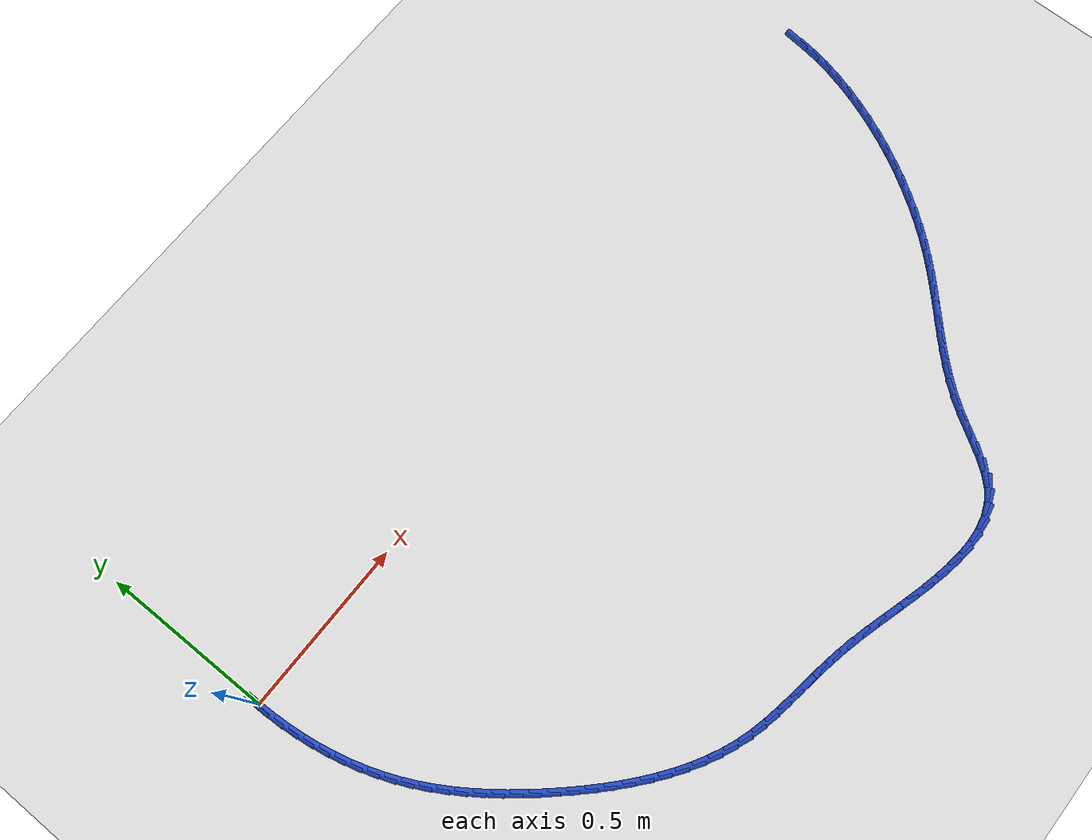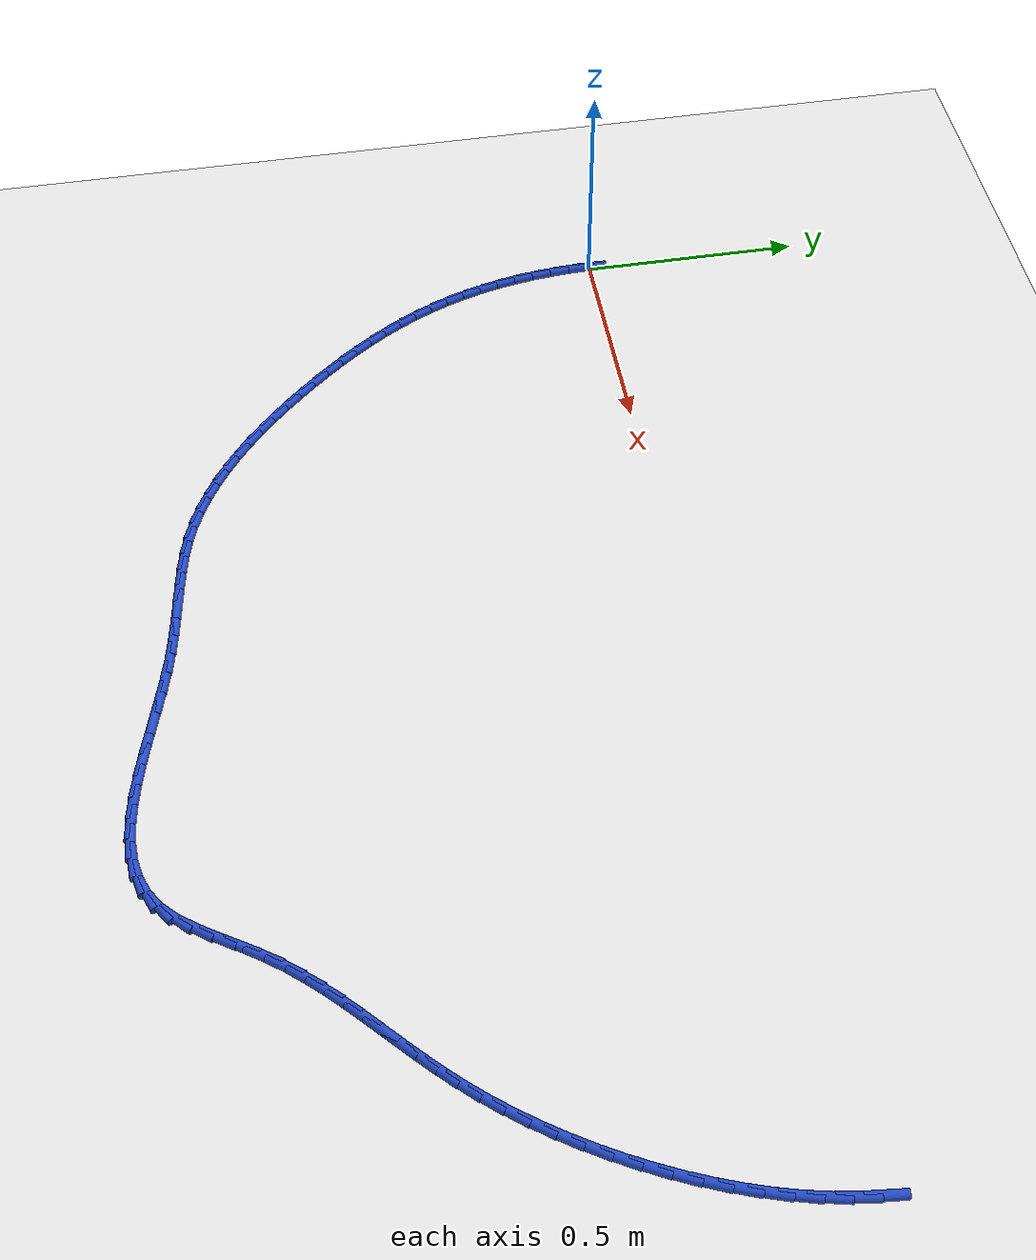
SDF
<sdf version="1.6">
 <world name="default">
  <model name="ground_plane">
   <static>1</static>
   <link name="link">
    <collision name="collision">
     <geometry><plane><normal>0 0 1</normal><size>100 100</size></plane></geometry>
     <surface><friction><ode><mu>100</mu><mu2>50</mu2></ode></friction></surface>
    </collision>
    <visual name="visual">
     <cast_shadows>0</cast_shadows>
     <geometry><plane><normal>0 0 1</normal><size>100 100</size></plane></geometry>
     <material>
      <script><uri>file://media/materials/scripts/gazebo.material</uri><name>Gazebo/WhiteGlow</name></script>
     </material>
    </visual>
   </link>
  </model>
  <model name="line">
   <link name="link_0">
    <pose>-3.209238430557093e-17 9.71445146547012e-17 0.01 0 1.57 1.5660977608102957</pose>
    <collision name="collision">
     <geometry><cylinder><radius>0.01</radius><length>0.08</length></cylinder></geometry>
    </collision>
    <visual name="visual">
     <material>
      <script><name>Gazebo/Blue</name><uri>file://media/materials/scripts/gazebo.material</uri></script>
     </material>
     <geometry><cylinder><radius>0.01</radius><length>0.08</length></cylinder></geometry>
    </visual>
   </link>
   <link name="link_81">
    <pose>2.3989822364420994 0.04270048370846303 0.01 0 1.57 1.4647585450670022</pose>
    <collision name="collision">
     <geometry><cylinder><radius>0.01</radius><length>0.08</length></cylinder></geometry>
    </collision>
    <visual name="visual">
     <material>
      <script><name>Gazebo/Blue</name><uri>file://media/materials/scripts/gazebo.material</uri></script>
     </material>
     <geometry><cylinder><radius>0.01</radius><length>0.08</length></cylinder></geometry>
    </visual>
   </link>
   <link name="link_82">
    <pose>2.393983410104081 -0.004264631723761472 0.01 0 1.57 1.4022971191299147</pose>
    <collision name="collision">
     <geometry><cylinder><radius>0.01</radius><length>0.08</length></cylinder></geometry>
    </collision>
    <visual name="visual">
     <material>
      <script><name>Gazebo/Blue</name><uri>file://media/materials/scripts/gazebo.material</uri></script>
     </material>
     <geometry><cylinder><radius>0.01</radius><length>0.08</length></cylinder></geometry>
    </visual>
   </link>
   <link name="link_83">
    <pose>2.3858760537314687 -0.05192350730381144 0.01 0 1.57 1.3453398802391077</pose>
    <collision name="collision">
     <geometry><cylinder><radius>0.01</radius><length>0.08</length></cylinder></geometry>
    </collision>
    <visual name="visual">
     <material>
      <script><name>Gazebo/Blue</name><uri>file://media/materials/scripts/gazebo.material</uri></script>
     </material>
     <geometry><cylinder><radius>0.01</radius><length>0.08</length></cylinder></geometry>
    </visual>
   </link>
   <link name="link_84">
    <pose>2.374838256119861 -0.10004872888861199 0.01 0 1.57 1.293035429502675</pose>
    <collision name="collision">
     <geometry><cylinder><radius>0.01</radius><length>0.08</length></cylinder></geometry>
    </collision>
    <visual name="visual">
     <material>
      <script><name>Gazebo/Blue</name><uri>file://media/materials/scripts/gazebo.material</uri></script>
     </material>
     <geometry><cylinder><radius>0.01</radius><length>0.08</length></cylinder></geometry>
    </visual>
   </link>
   <link name="link_85">
    <pose>2.361048106064852 -0.14841288233508756 0.01 0 1.57 1.2446024082311242</pose>
    <collision name="collision">
     <geometry><cylinder><radius>0.01</radius><length>0.08</length></cylinder></geometry>
    </collision>
    <visual name="visual">
     <material>
      <script><name>Gazebo/Blue</name><uri>file://media/materials/scripts/gazebo.material</uri></script>
     </material>
     <geometry><cylinder><radius>0.01</radius><length>0.08</length></cylinder></geometry>
    </visual>
   </link>
   <link name="link_86">
    <pose>2.34468369236204 -0.19678855350016256 0.01 0 1.57 1.1993318355117164</pose>
    <collision name="collision">
     <geometry><cylinder><radius>0.01</radius><length>0.08</length></cylinder></geometry>
    </collision>
    <visual name="visual">
     <material>
      <script><name>Gazebo/Blue</name><uri>file://media/materials/scripts/gazebo.material</uri></script>
     </material>
     <geometry><cylinder><radius>0.01</radius><length>0.08</length></cylinder></geometry>
    </visual>
   </link>
   <link name="link_87">
    <pose>2.3259231038070225 -0.24494832824076224 0.01 0 1.57 1.1565804175019712</pose>
    <collision name="collision">
     <geometry><cylinder><radius>0.01</radius><length>0.08</length></cylinder></geometry>
    </collision>
    <visual name="visual">
     <material>
      <script><name>Gazebo/Blue</name><uri>file://media/materials/scripts/gazebo.material</uri></script>
     </material>
     <geometry><cylinder><radius>0.01</radius><length>0.08</length></cylinder></geometry>
    </visual>
   </link>
   <link name="link_88">
    <pose>2.3049444291953938 -0.2926647924138093 0.01 0 1.57 1.1157591652181083</pose>
    <collision name="collision">
     <geometry><cylinder><radius>0.01</radius><length>0.08</length></cylinder></geometry>
    </collision>
    <visual name="visual">
     <material>
      <script><name>Gazebo/Blue</name><uri>file://media/materials/scripts/gazebo.material</uri></script>
     </material>
     <geometry><cylinder><radius>0.01</radius><length>0.08</length></cylinder></geometry>
    </visual>
   </link>
   <link name="link_89">
    <pose>2.2819257573227527 -0.339710531876229 0.01 0 1.57 1.0763196920658165</pose>
    <collision name="collision">
     <geometry><cylinder><radius>0.01</radius><length>0.08</length></cylinder></geometry>
    </collision>
    <visual name="visual">
     <material>
      <script><name>Gazebo/Blue</name><uri>file://media/materials/scripts/gazebo.material</uri></script>
     </material>
     <geometry><cylinder><radius>0.01</radius><length>0.08</length></cylinder></geometry>
    </visual>
   </link>
   <link name="link_90">
    <pose>2.2570451769846938 -0.3858581324849456 0.01 0 1.57 1.037739283660254</pose>
    <collision name="collision">
     <geometry><cylinder><radius>0.01</radius><length>0.08</length></cylinder></geometry>
    </collision>
    <visual name="visual">
     <material>
      <script><name>Gazebo/Blue</name><uri>file://media/materials/scripts/gazebo.material</uri></script>
     </material>
     <geometry><cylinder><radius>0.01</radius><length>0.08</length></cylinder></geometry>
    </visual>
   </link>
   <link name="link_91">
    <pose>2.2304807769768153 -0.4308801800968838 0.01 0 1.57 0.9995050182316088</pose>
    <collision name="collision">
     <geometry><cylinder><radius>0.01</radius><length>0.08</length></cylinder></geometry>
    </collision>
    <visual name="visual">
     <material>
      <script><name>Gazebo/Blue</name><uri>file://media/materials/scripts/gazebo.material</uri></script>
     </material>
     <geometry><cylinder><radius>0.01</radius><length>0.08</length></cylinder></geometry>
    </visual>
   </link>
   <link name="link_92">
    <pose>2.2024106460947124 -0.4745492605689684 0.01 0 1.57 0.9610966809648012</pose>
    <collision name="collision">
     <geometry><cylinder><radius>0.01</radius><length>0.08</length></cylinder></geometry>
    </collision>
    <visual name="visual">
     <material>
      <script><name>Gazebo/Blue</name><uri>file://media/materials/scripts/gazebo.material</uri></script>
     </material>
     <geometry><cylinder><radius>0.01</radius><length>0.08</length></cylinder></geometry>
    </visual>
   </link>
   <link name="link_93">
    <pose>2.1730128731339837 -0.5166379597581225 0.01 0 1.57 0.9219678278052561</pose>
    <collision name="collision">
     <geometry><cylinder><radius>0.01</radius><length>0.08</length></cylinder></geometry>
    </collision>
    <visual name="visual">
     <material>
      <script><name>Gazebo/Blue</name><uri>file://media/materials/scripts/gazebo.material</uri></script>
     </material>
     <geometry><cylinder><radius>0.01</radius><length>0.08</length></cylinder></geometry>
    </visual>
   </link>
   <link name="link_94">
    <pose>2.142465546890225 -0.5569188635212712 0.01 0 1.57 0.8815240277991248</pose>
    <collision name="collision">
     <geometry><cylinder><radius>0.01</radius><length>0.08</length></cylinder></geometry>
    </collision>
    <visual name="visual">
     <material>
      <script><name>Gazebo/Blue</name><uri>file://media/materials/scripts/gazebo.material</uri></script>
     </material>
     <geometry><cylinder><radius>0.01</radius><length>0.08</length></cylinder></geometry>
    </visual>
   </link>
   <link name="link_95">
    <pose>2.1109467561590316 -0.5951645577153388 0.01 0 1.57 0.8392224958088419</pose>
    <collision name="collision">
     <geometry><cylinder><radius>0.01</radius><length>0.08</length></cylinder></geometry>
    </collision>
    <visual name="visual">
     <material>
      <script><name>Gazebo/Blue</name><uri>file://media/materials/scripts/gazebo.material</uri></script>
     </material>
     <geometry><cylinder><radius>0.01</radius><length>0.08</length></cylinder></geometry>
    </visual>
   </link>
   <link name="link_96">
    <pose>2.078635164351534 -0.6311560730018434 0.01 0 1.57 0.7991823153461424</pose>
    <collision name="collision">
     <geometry><cylinder><radius>0.01</radius><length>0.08</length></cylinder></geometry>
    </collision>
    <visual name="visual">
     <material>
      <script><name>Gazebo/Blue</name><uri>file://media/materials/scripts/gazebo.material</uri></script>
     </material>
     <geometry><cylinder><radius>0.01</radius><length>0.08</length></cylinder></geometry>
    </visual>
   </link>
   <link name="link_97">
    <pose>2.045730282410615 -0.6649808246111214 0.01 0 1.57 0.7679508410412292</pose>
    <collision name="collision">
     <geometry><cylinder><radius>0.01</radius><length>0.08</length></cylinder></geometry>
    </collision>
    <visual name="visual">
     <material>
      <script><name>Gazebo/Blue</name><uri>file://media/materials/scripts/gazebo.material</uri></script>
     </material>
     <geometry><cylinder><radius>0.01</radius><length>0.08</length></cylinder></geometry>
    </visual>
   </link>
   <link name="link_98">
    <pose>2.012457870834085 -0.69711200286961 0.01 0 1.57 0.7469213424556508</pose>
    <collision name="collision">
     <geometry><cylinder><radius>0.01</radius><length>0.08</length></cylinder></geometry>
    </collision>
    <visual name="visual">
     <material>
      <script><name>Gazebo/Blue</name><uri>file://media/materials/scripts/gazebo.material</uri></script>
     </material>
     <geometry><cylinder><radius>0.01</radius><length>0.08</length></cylinder></geometry>
    </visual>
   </link>
   <link name="link_99">
    <pose>1.979045363152527 -0.7280473857351213 0.01 0 1.57 0.7368573172017987</pose>
    <collision name="collision">
     <geometry><cylinder><radius>0.01</radius><length>0.08</length></cylinder></geometry>
    </collision>
    <visual name="visual">
     <material>
      <script><name>Gazebo/Blue</name><uri>file://media/materials/scripts/gazebo.material</uri></script>
     </material>
     <geometry><cylinder><radius>0.01</radius><length>0.08</length></cylinder></geometry>
    </visual>
   </link>
   <link name="link_100">
    <pose>1.945720192896527 -0.7582847511654686 0.01 0 1.57 0.7382738378833245</pose>
    <collision name="collision">
     <geometry><cylinder><radius>0.01</radius><length>0.08</length></cylinder></geometry>
    </collision>
    <visual name="visual">
     <material>
      <script><name>Gazebo/Blue</name><uri>file://media/materials/scripts/gazebo.material</uri></script>
     </material>
     <geometry><cylinder><radius>0.01</radius><length>0.08</length></cylinder></geometry>
    </visual>
   </link>
   <link name="link_101">
    <pose>1.9127097935966695 -0.7883218771184656 0.01 0 1.57 0.7514393562236549</pose>
    <collision name="collision">
     <geometry><cylinder><radius>0.01</radius><length>0.08</length></cylinder></geometry>
    </collision>
    <visual name="visual">
     <material>
      <script><name>Gazebo/Blue</name><uri>file://media/materials/scripts/gazebo.material</uri></script>
     </material>
     <geometry><cylinder><radius>0.01</radius><length>0.08</length></cylinder></geometry>
    </visual>
   </link>
   <link name="link_102">
    <pose>1.8802415987835408 -0.8186565415519242 0.01 0 1.57 0.7763487660284082</pose>
    <collision name="collision">
     <geometry><cylinder><radius>0.01</radius><length>0.08</length></cylinder></geometry>
    </collision>
    <visual name="visual">
     <material>
      <script><name>Gazebo/Blue</name><uri>file://media/materials/scripts/gazebo.material</uri></script>
     </material>
     <geometry><cylinder><radius>0.01</radius><length>0.08</length></cylinder></geometry>
    </visual>
   </link>
   <link name="link_103">
    <pose>1.8485430419877242 -0.8497865224236574 0.01 0 1.57 0.8126643075136382</pose>
    <collision name="collision">
     <geometry><cylinder><radius>0.01</radius><length>0.08</length></cylinder></geometry>
    </collision>
    <visual name="visual">
     <material>
      <script><name>Gazebo/Blue</name><uri>file://media/materials/scripts/gazebo.material</uri></script>
     </material>
     <geometry><cylinder><radius>0.01</radius><length>0.08</length></cylinder></geometry>
    </visual>
   </link>
   <link name="link_104">
    <pose>1.8178415567398052 -0.8822095976914786 0.01 0 1.57 0.8596357708084238</pose>
    <collision name="collision">
     <geometry><cylinder><radius>0.01</radius><length>0.08</length></cylinder></geometry>
    </collision>
    <visual name="visual">
     <material>
      <script><name>Gazebo/Blue</name><uri>file://media/materials/scripts/gazebo.material</uri></script>
     </material>
     <geometry><cylinder><radius>0.01</radius><length>0.08</length></cylinder></geometry>
    </visual>
   </link>
   <link name="link_105">
    <pose>1.78836457657037 -0.9164235453132009 0.01 0 1.57 0.916028699389244</pose>
    <collision name="collision">
     <geometry><cylinder><radius>0.01</radius><length>0.08</length></cylinder></geometry>
    </collision>
    <visual name="visual">
     <material>
      <script><name>Gazebo/Blue</name><uri>file://media/materials/scripts/gazebo.material</uri></script>
     </material>
     <geometry><cylinder><radius>0.01</radius><length>0.08</length></cylinder></geometry>
    </visual>
   </link>
   <link name="link_106">
    <pose>1.7603395350100006 -0.9529261432466372 0.01 0 1.57 0.9752520746618075</pose>
    <collision name="collision">
     <geometry><cylinder><radius>0.01</radius><length>0.08</length></cylinder></geometry>
    </collision>
    <visual name="visual">
     <material>
      <script><name>Gazebo/Blue</name><uri>file://media/materials/scripts/gazebo.material</uri></script>
     </material>
     <geometry><cylinder><radius>0.01</radius><length>0.08</length></cylinder></geometry>
    </visual>
   </link>
   <link name="link_107">
    <pose>1.7338785094102986 -0.9919763552666984 0.01 0 1.57 1.001900429665724</pose>
    <collision name="collision">
     <geometry><cylinder><radius>0.01</radius><length>0.08</length></cylinder></geometry>
    </collision>
    <visual name="visual">
     <material>
      <script><name>Gazebo/Blue</name><uri>file://media/materials/scripts/gazebo.material</uri></script>
     </material>
     <geometry><cylinder><radius>0.01</radius><length>0.08</length></cylinder></geometry>
    </visual>
   </link>
   <link name="link_108">
    <pose>1.7082420163151608 -1.0320702157563146 0.01 0 1.57 0.9821417638700723</pose>
    <collision name="collision">
     <geometry><cylinder><radius>0.01</radius><length>0.08</length></cylinder></geometry>
    </collision>
    <visual name="visual">
     <material>
      <script><name>Gazebo/Blue</name><uri>file://media/materials/scripts/gazebo.material</uri></script>
     </material>
     <geometry><cylinder><radius>0.01</radius><length>0.08</length></cylinder></geometry>
    </visual>
   </link>
   <link name="link_109">
    <pose>1.6823092885888988 -1.0709144129949484 0.01 0 1.57 0.9115580403140892</pose>
    <collision name="collision">
     <geometry><cylinder><radius>0.01</radius><length>0.08</length></cylinder></geometry>
    </collision>
    <visual name="visual">
     <material>
      <script><name>Gazebo/Blue</name><uri>file://media/materials/scripts/gazebo.material</uri></script>
     </material>
     <geometry><cylinder><radius>0.01</radius><length>0.08</length></cylinder></geometry>
    </visual>
   </link>
   <link name="link_110">
    <pose>1.654957768895657 -1.106211929130372 0.01 0 1.57 0.7780002135769051</pose>
    <collision name="collision">
     <geometry><cylinder><radius>0.01</radius><length>0.08</length></cylinder></geometry>
    </collision>
    <visual name="visual">
     <material>
      <script><name>Gazebo/Blue</name><uri>file://media/materials/scripts/gazebo.material</uri></script>
     </material>
     <geometry><cylinder><radius>0.01</radius><length>0.08</length></cylinder></geometry>
    </visual>
   </link>
   <link name="link_111">
    <pose>1.6250648998995771 -1.1356657463103574 0.01 0 1.57 0.5789534486509589</pose>
    <collision name="collision">
     <geometry><cylinder><radius>0.01</radius><length>0.08</length></cylinder></geometry>
    </collision>
    <visual name="visual">
     <material>
      <script><name>Gazebo/Blue</name><uri>file://media/materials/scripts/gazebo.material</uri></script>
     </material>
     <geometry><cylinder><radius>0.01</radius><length>0.08</length></cylinder></geometry>
    </visual>
   </link>
   <link name="link_112">
    <pose>1.5917346601065365 -1.1574528472814076 0.01 0 1.57 0.37374849686089145</pose>
    <collision name="collision">
     <geometry><cylinder><radius>0.01</radius><length>0.08</length></cylinder></geometry>
    </collision>
    <visual name="visual">
     <material>
      <script><name>Gazebo/Blue</name><uri>file://media/materials/scripts/gazebo.material</uri></script>
     </material>
     <geometry><cylinder><radius>0.01</radius><length>0.08</length></cylinder></geometry>
    </visual>
   </link>
   <link name="link_113">
    <pose>1.5550666238930033 -1.1718333864203851 0.01 0 1.57 0.19447474367327164</pose>
    <collision name="collision">
     <geometry><cylinder><radius>0.01</radius><length>0.08</length></cylinder></geometry>
    </collision>
    <visual name="visual">
     <material>
      <script><name>Gazebo/Blue</name><uri>file://media/materials/scripts/gazebo.material</uri></script>
     </material>
     <geometry><cylinder><radius>0.01</radius><length>0.08</length></cylinder></geometry>
    </visual>
   </link>
   <link name="link_114">
    <pose>1.5154337921336538 -1.1796396320922413 0.01 0 1.57 0.04884815083030801</pose>
    <collision name="collision">
     <geometry><cylinder><radius>0.01</radius><length>0.08</length></cylinder></geometry>
    </collision>
    <visual name="visual">
     <material>
      <script><name>Gazebo/Blue</name><uri>file://media/materials/scripts/gazebo.material</uri></script>
     </material>
     <geometry><cylinder><radius>0.01</radius><length>0.08</length></cylinder></geometry>
    </visual>
   </link>
   <link name="link_115">
    <pose>1.4732091733931194 -1.1817038687522907 0.01 0 1.57 -0.063937717175047</pose>
    <collision name="collision">
     <geometry><cylinder><radius>0.01</radius><length>0.08</length></cylinder></geometry>
    </collision>
    <visual name="visual">
     <material>
      <script><name>Gazebo/Blue</name><uri>file://media/materials/scripts/gazebo.material</uri></script>
     </material>
     <geometry><cylinder><radius>0.01</radius><length>0.08</length></cylinder></geometry>
    </visual>
   </link>
   <link name="link_116">
    <pose>1.4287657762360308 -1.1788583808558468 0.01 0 1.57 -0.14845791535402425</pose>
    <collision name="collision">
     <geometry><cylinder><radius>0.01</radius><length>0.08</length></cylinder></geometry>
    </collision>
    <visual name="visual">
     <material>
      <script><name>Gazebo/Blue</name><uri>file://media/materials/scripts/gazebo.material</uri></script>
     </material>
     <geometry><cylinder><radius>0.01</radius><length>0.08</length></cylinder></geometry>
    </visual>
   </link>
   <link name="link_117">
    <pose>1.382476609227021 -1.171935452858224 0.01 0 1.57 -0.20975944924102316</pose>
    <collision name="collision">
     <geometry><cylinder><radius>0.01</radius><length>0.08</length></cylinder></geometry>
    </collision>
    <visual name="visual">
     <material>
      <script><name>Gazebo/Blue</name><uri>file://media/materials/scripts/gazebo.material</uri></script>
     </material>
     <geometry><cylinder><radius>0.01</radius><length>0.08</length></cylinder></geometry>
    </visual>
   </link>
   <link name="link_118">
    <pose>1.334714680930722 -1.1617673692147368 0.01 0 1.57 -0.25200712322696717</pose>
    <collision name="collision">
     <geometry><cylinder><radius>0.01</radius><length>0.08</length></cylinder></geometry>
    </collision>
    <visual name="visual">
     <material>
      <script><name>Gazebo/Blue</name><uri>file://media/materials/scripts/gazebo.material</uri></script>
     </material>
     <geometry><cylinder><radius>0.01</radius><length>0.08</length></cylinder></geometry>
    </visual>
   </link>
   <link name="link_119">
    <pose>1.2858529999117643 -1.149186414380699 0.01 0 1.57 -0.27817697864029944</pose>
    <collision name="collision">
     <geometry><cylinder><radius>0.01</radius><length>0.08</length></cylinder></geometry>
    </collision>
    <visual name="visual">
     <material>
      <script><name>Gazebo/Blue</name><uri>file://media/materials/scripts/gazebo.material</uri></script>
     </material>
     <geometry><cylinder><radius>0.01</radius><length>0.08</length></cylinder></geometry>
    </visual>
   </link>
   <link name="link_120">
    <pose>1.2362645747347794 -1.1350248728114234 0.01 0 1.57 -0.29011885115252184</pose>
    <collision name="collision">
     <geometry><cylinder><radius>0.01</radius><length>0.08</length></cylinder></geometry>
    </collision>
    <visual name="visual">
     <material>
      <script><name>Gazebo/Blue</name><uri>file://media/materials/scripts/gazebo.material</uri></script>
     </material>
     <geometry><cylinder><radius>0.01</radius><length>0.08</length></cylinder></geometry>
    </visual>
   </link>
   <link name="link_121">
    <pose>1.1863224139643989 -1.1201150289622255 0.01 0 1.57 -0.28867948193971593</pose>
    <collision name="collision">
     <geometry><cylinder><radius>0.01</radius><length>0.08</length></cylinder></geometry>
    </collision>
    <visual name="visual">
     <material>
      <script><name>Gazebo/Blue</name><uri>file://media/materials/scripts/gazebo.material</uri></script>
     </material>
     <geometry><cylinder><radius>0.01</radius><length>0.08</length></cylinder></geometry>
    </visual>
   </link>
   <link name="link_122">
    <pose>1.1363995261652557 -1.105289167288419 0.01 0 1.57 -0.2737766030665136</pose>
    <collision name="collision">
     <geometry><cylinder><radius>0.01</radius><length>0.08</length></cylinder></geometry>
    </collision>
    <visual name="visual">
     <material>
      <script><name>Gazebo/Blue</name><uri>file://media/materials/scripts/gazebo.material</uri></script>
     </material>
     <geometry><cylinder><radius>0.01</radius><length>0.08</length></cylinder></geometry>
    </visual>
   </link>
   <link name="link_123">
    <pose>1.0868689199019808 -1.0913795722453183 0.01 0 1.57 -0.244395076603305</pose>
    <collision name="collision">
     <geometry><cylinder><radius>0.01</radius><length>0.08</length></cylinder></geometry>
    </collision>
    <visual name="visual">
     <material>
      <script><name>Gazebo/Blue</name><uri>file://media/materials/scripts/gazebo.material</uri></script>
     </material>
     <geometry><cylinder><radius>0.01</radius><length>0.08</length></cylinder></geometry>
    </visual>
   </link>
   <link name="link_124">
    <pose>1.0381035891265695 -1.0792184726082201 0.01 0 1.57 -0.20451830565084816</pose>
    <collision name="collision">
     <geometry><cylinder><radius>0.01</radius><length>0.08</length></cylinder></geometry>
    </collision>
    <visual name="visual">
     <material>
      <script><name>Gazebo/Blue</name><uri>file://media/materials/scripts/gazebo.material</uri></script>
     </material>
     <geometry><cylinder><radius>0.01</radius><length>0.08</length></cylinder></geometry>
    </visual>
   </link>
   <link name="link_125">
    <pose>0.9903937211513518 -1.0693225705670852 0.01 0 1.57 -0.17342223580335903</pose>
    <collision name="collision">
     <geometry><cylinder><radius>0.01</radius><length>0.08</length></cylinder></geometry>
    </collision>
    <visual name="visual">
     <material>
      <script><name>Gazebo/Blue</name><uri>file://media/materials/scripts/gazebo.material</uri></script>
     </material>
     <geometry><cylinder><radius>0.01</radius><length>0.08</length></cylinder></geometry>
    </visual>
   </link>
   <link name="link_126">
    <pose>0.9437521683988003 -1.0611518108930984 0.01 0 1.57 -0.15668211391233047</pose>
    <collision name="collision">
     <geometry><cylinder><radius>0.01</radius><length>0.08</length></cylinder></geometry>
    </collision>
    <visual name="visual">
     <material>
      <script><name>Gazebo/Blue</name><uri>file://media/materials/scripts/gazebo.material</uri></script>
     </material>
     <geometry><cylinder><radius>0.01</radius><length>0.08</length></cylinder></geometry>
    </visual>
   </link>
   <link name="link_127">
    <pose>0.898133789139475 -1.0539451573250433 0.01 0 1.57 -0.15562054507566536</pose>
    <collision name="collision">
     <geometry><cylinder><radius>0.01</radius><length>0.08</length></cylinder></geometry>
    </collision>
    <visual name="visual">
     <material>
      <script><name>Gazebo/Blue</name><uri>file://media/materials/scripts/gazebo.material</uri></script>
     </material>
     <geometry><cylinder><radius>0.01</radius><length>0.08</length></cylinder></geometry>
    </visual>
   </link>
   <link name="link_128">
    <pose>0.8534934416439338 -1.0469415736017027 0.01 0 1.57 -0.1713079939092948</pose>
    <collision name="collision">
     <geometry><cylinder><radius>0.01</radius><length>0.08</length></cylinder></geometry>
    </collision>
    <visual name="visual">
     <material>
      <script><name>Gazebo/Blue</name><uri>file://media/materials/scripts/gazebo.material</uri></script>
     </material>
     <geometry><cylinder><radius>0.01</radius><length>0.08</length></cylinder></geometry>
    </visual>
   </link>
   <link name="link_129">
    <pose>0.8097859841827351 -1.0393800234618602 0.01 0 1.57 -0.20449500703981588</pose>
    <collision name="collision">
     <geometry><cylinder><radius>0.01</radius><length>0.08</length></cylinder></geometry>
    </collision>
    <visual name="visual">
     <material>
      <script><name>Gazebo/Blue</name><uri>file://media/materials/scripts/gazebo.material</uri></script>
     </material>
     <geometry><cylinder><radius>0.01</radius><length>0.08</length></cylinder></geometry>
    </visual>
   </link>
   <link name="link_130">
    <pose>0.7669662750264378 -1.0304994706442987 0.01 0 1.57 -0.25540638852888436</pose>
    <collision name="collision">
     <geometry><cylinder><radius>0.01</radius><length>0.08</length></cylinder></geometry>
    </collision>
    <visual name="visual">
     <material>
      <script><name>Gazebo/Blue</name><uri>file://media/materials/scripts/gazebo.material</uri></script>
     </material>
     <geometry><cylinder><radius>0.01</radius><length>0.08</length></cylinder></geometry>
    </visual>
   </link>
   <link name="link_131">
    <pose>0.7249891724455995 -1.0195388788878017 0.01 0 1.57 -0.3231220298106022</pose>
    <collision name="collision">
     <geometry><cylinder><radius>0.01</radius><length>0.08</length></cylinder></geometry>
    </collision>
    <visual name="visual">
     <material>
      <script><name>Gazebo/Blue</name><uri>file://media/materials/scripts/gazebo.material</uri></script>
     </material>
     <geometry><cylinder><radius>0.01</radius><length>0.08</length></cylinder></geometry>
    </visual>
   </link>
   <link name="link_132">
    <pose>0.6838103501867854 -1.005749825237177 0.01 0 1.57 -0.39689461570212775</pose>
    <collision name="collision">
     <geometry><cylinder><radius>0.01</radius><length>0.08</length></cylinder></geometry>
    </collision>
    <visual name="visual">
     <material>
      <script><name>Gazebo/Blue</name><uri>file://media/materials/scripts/gazebo.material</uri></script>
     </material>
     <geometry><cylinder><radius>0.01</radius><length>0.08</length></cylinder></geometry>
    </visual>
   </link>
   <link name="link_133">
    <pose>0.643413548956668 -0.9888180100652127 0.01 0 1.57 -0.4648022665270589</pose>
    <collision name="collision">
     <geometry><cylinder><radius>0.01</radius><length>0.08</length></cylinder></geometry>
    </collision>
    <visual name="visual">
     <material>
      <script><name>Gazebo/Blue</name><uri>file://media/materials/scripts/gazebo.material</uri></script>
     </material>
     <geometry><cylinder><radius>0.01</radius><length>0.08</length></cylinder></geometry>
    </visual>
   </link>
   <link name="link_134">
    <pose>0.6038169959080758 -0.9689625499292708 0.01 0 1.57 -0.5263012586812306</pose>
    <collision name="collision">
     <geometry><cylinder><radius>0.01</radius><length>0.08</length></cylinder></geometry>
    </collision>
    <visual name="visual">
     <material>
      <script><name>Gazebo/Blue</name><uri>file://media/materials/scripts/gazebo.material</uri></script>
     </material>
     <geometry><cylinder><radius>0.01</radius><length>0.08</length></cylinder></geometry>
    </visual>
   </link>
   <link name="link_135">
    <pose>0.5650410346660959 -0.9464352977420937 0.01 0 1.57 -0.5817199676052025</pose>
    <collision name="collision">
     <geometry><cylinder><radius>0.01</radius><length>0.08</length></cylinder></geometry>
    </collision>
    <visual name="visual">
     <material>
      <script><name>Gazebo/Blue</name><uri>file://media/materials/scripts/gazebo.material</uri></script>
     </material>
     <geometry><cylinder><radius>0.01</radius><length>0.08</length></cylinder></geometry>
    </visual>
   </link>
   <link name="link_136">
    <pose>0.5271060088558145 -0.9214881064164229 0.01 0 1.57 -0.6314823520375271</pose>
    <collision name="collision">
     <geometry><cylinder><radius>0.01</radius><length>0.08</length></cylinder></geometry>
    </collision>
    <visual name="visual">
     <material>
      <script><name>Gazebo/Blue</name><uri>file://media/materials/scripts/gazebo.material</uri></script>
     </material>
     <geometry><cylinder><radius>0.01</radius><length>0.08</length></cylinder></geometry>
    </visual>
   </link>
   <link name="link_137">
    <pose>0.4900322621023204 -0.8943728288650024 0.01 0 1.57 -0.67605051905966</pose>
    <collision name="collision">
     <geometry><cylinder><radius>0.01</radius><length>0.08</length></cylinder></geometry>
    </collision>
    <visual name="visual">
     <material>
      <script><name>Gazebo/Blue</name><uri>file://media/materials/scripts/gazebo.material</uri></script>
     </material>
     <geometry><cylinder><radius>0.01</radius><length>0.08</length></cylinder></geometry>
    </visual>
   </link>
   <link name="link_138">
    <pose>0.4538401380306997 -0.8653413180005738 0.01 0 1.57 -0.7158855264017713</pose>
    <collision name="collision">
     <geometry><cylinder><radius>0.01</radius><length>0.08</length></cylinder></geometry>
    </collision>
    <visual name="visual">
     <material>
      <script><name>Gazebo/Blue</name><uri>file://media/materials/scripts/gazebo.material</uri></script>
     </material>
     <geometry><cylinder><radius>0.01</radius><length>0.08</length></cylinder></geometry>
    </visual>
   </link>
   <link name="link_139">
    <pose>0.4185499802660397 -0.8346454267358798 0.01 0 1.57 -0.7514227349607382</pose>
    <collision name="collision">
     <geometry><cylinder><radius>0.01</radius><length>0.08</length></cylinder></geometry>
    </collision>
    <visual name="visual">
     <material>
      <script><name>Gazebo/Blue</name><uri>file://media/materials/scripts/gazebo.material</uri></script>
     </material>
     <geometry><cylinder><radius>0.01</radius><length>0.08</length></cylinder></geometry>
    </visual>
   </link>
   <link name="link_140">
    <pose>0.3841821324334274 -0.8025370079836629 0.01 0 1.57 -0.7830576231646306</pose>
    <collision name="collision">
     <geometry><cylinder><radius>0.01</radius><length>0.08</length></cylinder></geometry>
    </collision>
    <visual name="visual">
     <material>
      <script><name>Gazebo/Blue</name><uri>file://media/materials/scripts/gazebo.material</uri></script>
     </material>
     <geometry><cylinder><radius>0.01</radius><length>0.08</length></cylinder></geometry>
    </visual>
   </link>
   <link name="link_141">
    <pose>0.3507569381579492 -0.7692679146566646 0.01 0 1.57 -0.8111385005696273</pose>
    <collision name="collision">
     <geometry><cylinder><radius>0.01</radius><length>0.08</length></cylinder></geometry>
    </collision>
    <visual name="visual">
     <material>
      <script><name>Gazebo/Blue</name><uri>file://media/materials/scripts/gazebo.material</uri></script>
     </material>
     <geometry><cylinder><radius>0.01</radius><length>0.08</length></cylinder></geometry>
    </visual>
   </link>
   <link name="link_142">
    <pose>0.3182947410646936 -0.7350899996676287 0.01 0 1.57 -0.8359712290341582</pose>
    <collision name="collision">
     <geometry><cylinder><radius>0.01</radius><length>0.08</length></cylinder></geometry>
    </collision>
    <visual name="visual">
     <material>
      <script><name>Gazebo/Blue</name><uri>file://media/materials/scripts/gazebo.material</uri></script>
     </material>
     <geometry><cylinder><radius>0.01</radius><length>0.08</length></cylinder></geometry>
    </visual>
   </link>
   <link name="link_143">
    <pose>0.28681602795082883 -0.700254722669422 0.01 0 1.57 -0.8595621280481293</pose>
    <collision name="collision">
     <geometry><cylinder><radius>0.01</radius><length>0.08</length></cylinder></geometry>
    </collision>
    <visual name="visual">
     <material>
      <script><name>Gazebo/Blue</name><uri>file://media/materials/scripts/gazebo.material</uri></script>
     </material>
     <geometry><cylinder><radius>0.01</radius><length>0.08</length></cylinder></geometry>
    </visual>
   </link>
   <link name="link_144">
    <pose>0.25637343168897564 -0.6649252456422665 0.01 0 1.57 -0.8860493568145599</pose>
    <collision name="collision">
     <geometry><cylinder><radius>0.01</radius><length>0.08</length></cylinder></geometry>
    </collision>
    <visual name="visual">
     <material>
      <script><name>Gazebo/Blue</name><uri>file://media/materials/scripts/gazebo.material</uri></script>
     </material>
     <geometry><cylinder><radius>0.01</radius><length>0.08</length></cylinder></geometry>
    </visual>
   </link>
   <link name="link_145">
    <pose>0.2270922087816882 -0.6290652506170553 0.01 0 1.57 -0.9160850699731433</pose>
    <collision name="collision">
     <geometry><cylinder><radius>0.01</radius><length>0.08</length></cylinder></geometry>
    </collision>
    <visual name="visual">
     <material>
      <script><name>Gazebo/Blue</name><uri>file://media/materials/scripts/gazebo.material</uri></script>
     </material>
     <geometry><cylinder><radius>0.01</radius><length>0.08</length></cylinder></geometry>
    </visual>
   </link>
   <link name="link_146">
    <pose>0.19910758343452348 -0.5926110407000561 0.01 0 1.57 -0.949759635656955</pose>
    <collision name="collision">
     <geometry><cylinder><radius>0.01</radius><length>0.08</length></cylinder></geometry>
    </collision>
    <visual name="visual">
     <material>
      <script><name>Gazebo/Blue</name><uri>file://media/materials/scripts/gazebo.material</uri></script>
     </material>
     <geometry><cylinder><radius>0.01</radius><length>0.08</length></cylinder></geometry>
    </visual>
   </link>
   <link name="link_147">
    <pose>0.17255477985303974 -0.5554989189975378 0.01 0 1.57 -0.987138078220669</pose>
    <collision name="collision">
     <geometry><cylinder><radius>0.01</radius><length>0.08</length></cylinder></geometry>
    </collision>
    <visual name="visual">
     <material>
      <script><name>Gazebo/Blue</name><uri>file://media/materials/scripts/gazebo.material</uri></script>
     </material>
     <geometry><cylinder><radius>0.01</radius><length>0.08</length></cylinder></geometry>
    </visual>
   </link>
   <link name="link_148">
    <pose>0.14756902224279417 -0.5176651886157679 0.01 0 1.57 -1.0282458596430444</pose>
    <collision name="collision">
     <geometry><cylinder><radius>0.01</radius><length>0.08</length></cylinder></geometry>
    </collision>
    <visual name="visual">
     <material>
      <script><name>Gazebo/Blue</name><uri>file://media/materials/scripts/gazebo.material</uri></script>
     </material>
     <geometry><cylinder><radius>0.01</radius><length>0.08</length></cylinder></geometry>
    </visual>
   </link>
   <link name="link_149">
    <pose>0.12428553480934396 -0.4790461526610141 0.01 0 1.57 -1.0730527804999694</pose>
    <collision name="collision">
     <geometry><cylinder><radius>0.01</radius><length>0.08</length></cylinder></geometry>
    </collision>
    <visual name="visual">
     <material>
      <script><name>Gazebo/Blue</name><uri>file://media/materials/scripts/gazebo.material</uri></script>
     </material>
     <geometry><cylinder><radius>0.01</radius><length>0.08</length></cylinder></geometry>
    </visual>
   </link>
   <link name="link_150">
    <pose>0.1028395417582466 -0.43957811423954435 0.01 0 1.57 -1.1214560412978805</pose>
    <collision name="collision">
     <geometry><cylinder><radius>0.01</radius><length>0.08</length></cylinder></geometry>
    </collision>
    <visual name="visual">
     <material>
      <script><name>Gazebo/Blue</name><uri>file://media/materials/scripts/gazebo.material</uri></script>
     </material>
     <geometry><cylinder><radius>0.01</radius><length>0.08</length></cylinder></geometry>
    </visual>
   </link>
   <link name="link_151">
    <pose>0.08336626729505918 -0.3991973764576259 0.01 0 1.57 -1.1730857607253113</pose>
    <collision name="collision">
     <geometry><cylinder><radius>0.01</radius><length>0.08</length></cylinder></geometry>
    </collision>
    <visual name="visual">
     <material>
      <script><name>Gazebo/Blue</name><uri>file://media/materials/scripts/gazebo.material</uri></script>
     </material>
     <geometry><cylinder><radius>0.01</radius><length>0.08</length></cylinder></geometry>
    </visual>
   </link>
   <link name="link_152">
    <pose>0.06599448571152547 -0.3578455562206238 0.01 0 1.57 -1.225021131312837</pose>
    <collision name="collision">
     <geometry><cylinder><radius>0.01</radius><length>0.08</length></cylinder></geometry>
    </collision>
    <visual name="visual">
     <material>
      <script><name>Gazebo/Blue</name><uri>file://media/materials/scripts/gazebo.material</uri></script>
     </material>
     <geometry><cylinder><radius>0.01</radius><length>0.08</length></cylinder></geometry>
    </visual>
   </link>
   <link name="link_153">
    <pose>0.05075560558747659 -0.3155444857432562 0.01 0 1.57 -1.275093240960846</pose>
    <collision name="collision">
     <geometry><cylinder><radius>0.01</radius><length>0.08</length></cylinder></geometry>
    </collision>
    <visual name="visual">
     <material>
      <script><name>Gazebo/Blue</name><uri>file://media/materials/scripts/gazebo.material</uri></script>
     </material>
     <geometry><cylinder><radius>0.01</radius><length>0.08</length></cylinder></geometry>
    </visual>
   </link>
   <link name="link_154">
    <pose>0.037605643015412894 -0.2723781097804324 0.01 0 1.57 -1.3232393939900111</pose>
    <collision name="collision">
     <geometry><cylinder><radius>0.01</radius><length>0.08</length></cylinder></geometry>
    </collision>
    <visual name="visual">
     <material>
      <script><name>Gazebo/Blue</name><uri>file://media/materials/scripts/gazebo.material</uri></script>
     </material>
     <geometry><cylinder><radius>0.01</radius><length>0.08</length></cylinder></geometry>
    </visual>
   </link>
   <link name="link_155">
    <pose>0.026498649135071516 -0.22843199192485042 0.01 0 1.57 -1.369485465215099</pose>
    <collision name="collision">
     <geometry><cylinder><radius>0.01</radius><length>0.08</length></cylinder></geometry>
    </collision>
    <visual name="visual">
     <material>
      <script><name>Gazebo/Blue</name><uri>file://media/materials/scripts/gazebo.material</uri></script>
     </material>
     <geometry><cylinder><radius>0.01</radius><length>0.08</length></cylinder></geometry>
    </visual>
   </link>
   <link name="link_156">
    <pose>0.017388675086189485 -0.18379169576920762 0.01 0 1.57 -1.413885298634274</pose>
    <collision name="collision">
     <geometry><cylinder><radius>0.01</radius><length>0.08</length></cylinder></geometry>
    </collision>
    <visual name="visual">
     <material>
      <script><name>Gazebo/Blue</name><uri>file://media/materials/scripts/gazebo.material</uri></script>
     </material>
     <geometry><cylinder><radius>0.01</radius><length>0.08</length></cylinder></geometry>
    </visual>
   </link>
   <link name="link_157">
    <pose>0.01022977200850427 -0.13854278490620356 0.01 0 1.57 -1.4565148129843801</pose>
    <collision name="collision">
     <geometry><cylinder><radius>0.01</radius><length>0.08</length></cylinder></geometry>
    </collision>
    <visual name="visual">
     <material>
      <script><name>Gazebo/Blue</name><uri>file://media/materials/scripts/gazebo.material</uri></script>
     </material>
     <geometry><cylinder><radius>0.01</radius><length>0.08</length></cylinder></geometry>
    </visual>
   </link>
   <link name="link_158">
    <pose>0.00497599104175284 -0.09277082292853557 0.01 0 1.57 -1.497466714791653</pose>
    <collision name="collision">
     <geometry><cylinder><radius>0.01</radius><length>0.08</length></cylinder></geometry>
    </collision>
    <visual name="visual">
     <material>
      <script><name>Gazebo/Blue</name><uri>file://media/materials/scripts/gazebo.material</uri></script>
     </material>
     <geometry><cylinder><radius>0.01</radius><length>0.08</length></cylinder></geometry>
    </visual>
   </link>
   <link name="link_159">
    <pose>0.0015813833256723567 -0.04656137342890169 0.01 0 1.57 -1.5368459602001352</pose>
    <collision name="collision">
     <geometry><cylinder><radius>0.01</radius><length>0.08</length></cylinder></geometry>
    </collision>
    <visual name="visual">
     <material>
      <script><name>Gazebo/Blue</name><uri>file://media/materials/scripts/gazebo.material</uri></script>
     </material>
     <geometry><cylinder><radius>0.01</radius><length>0.08</length></cylinder></geometry>
    </visual>
   </link>
   <link name="link_160">
    <pose>-3.469446951953614e-17 2.7755575615628914e-17 0.01 0 1.57 1.5668266444491812</pose>
    <collision name="collision">
     <geometry><cylinder><radius>0.01</radius><length>0.08</length></cylinder></geometry>
    </collision>
    <visual name="visual">
     <material>
      <script><name>Gazebo/Blue</name><uri>file://media/materials/scripts/gazebo.material</uri></script>
     </material>
     <geometry><cylinder><radius>0.01</radius><length>0.08</length></cylinder></geometry>
    </visual>
   </link>
  </model>
 </world>
</sdf>
